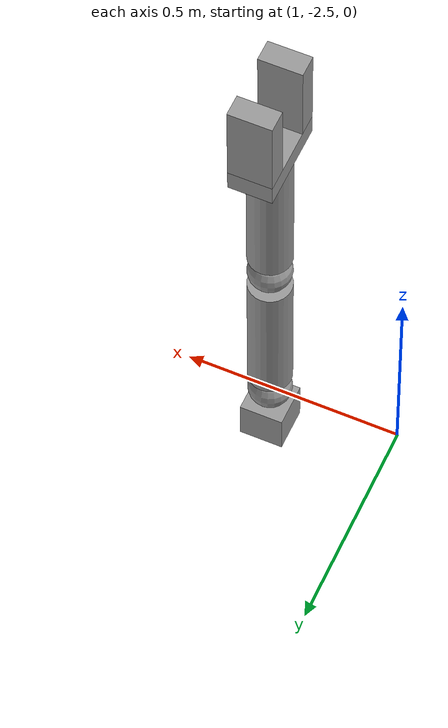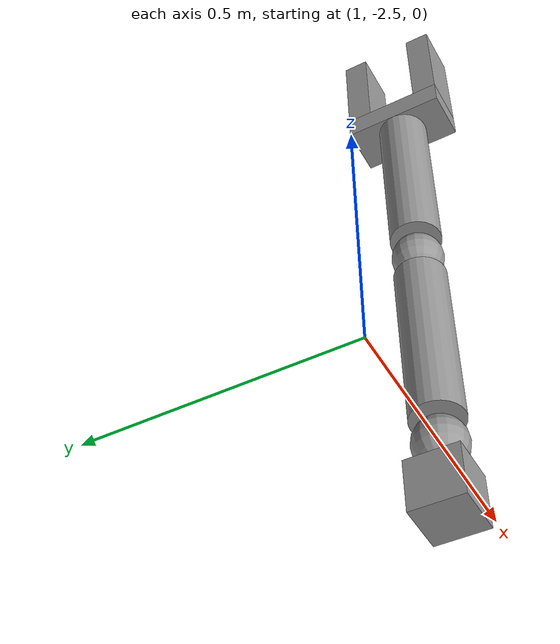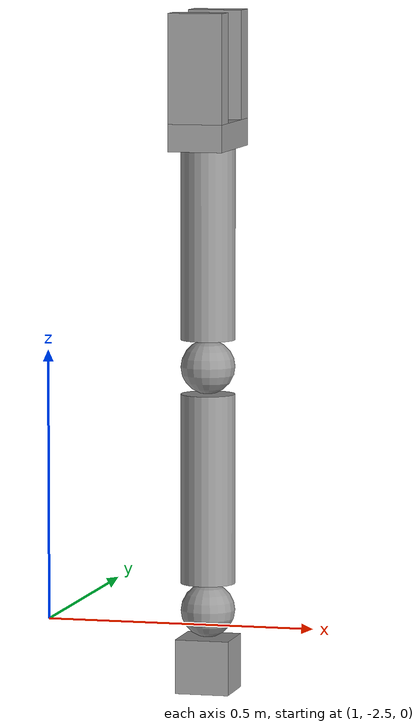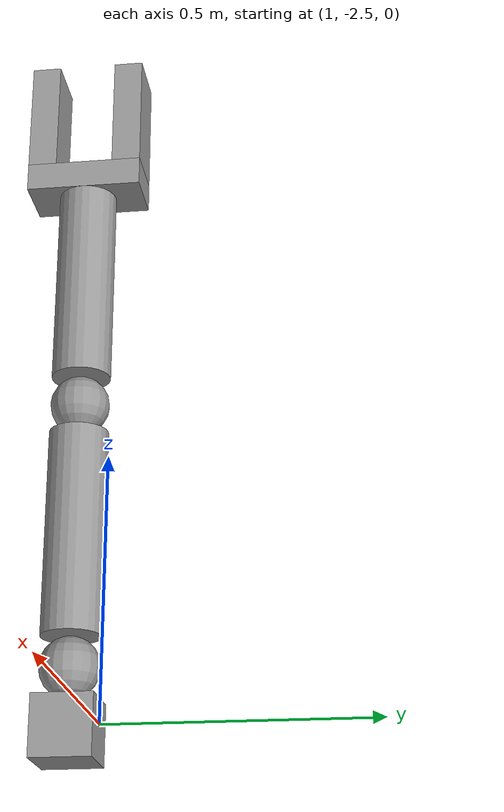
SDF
<?xml version='1.0'?>
<sdf version='1.6'>
  <model name='myrobotarm'>
    <link name='Base'>
      <inertial>
        <mass>1</mass>
        <inertia>
          <ixx>0.166667</ixx>
          <ixy>0</ixy>
          <ixz>0</ixz>
          <iyy>0.166667</iyy>
          <iyz>0</iyz>
          <izz>0.166667</izz>
        </inertia>
        <pose frame=''>0 0 0 0 -0 0</pose>
      </inertial>
      <pose frame=''>1.29977 -2.48919 -0.073664 0 -0 0</pose>
      <gravity>1</gravity>
      <self_collide>0</self_collide>
      <kinematic>0</kinematic>
      <enable_wind>0</enable_wind>
      <visual name='visual'>
        <pose frame=''>0 0 0 0 -0 0</pose>
        <geometry>
          <box>
            <size>0.1 0.1 0.1</size>
          </box>
        </geometry>
        <material>
          <lighting>1</lighting>
          <script>
            <uri>file://media/materials/scripts/gazebo.material</uri>
            <name>Gazebo/Grey</name>
          </script>
          <shader type='pixel'>
            <normal_map>__default__</normal_map>
          </shader>
          <ambient>0.3 0.3 0.3 1</ambient>
          <diffuse>0.7 0.7 0.7 1</diffuse>
          <specular>0.01 0.01 0.01 1</specular>
          <emissive>0 0 0 1</emissive>
        </material>
        <transparency>0</transparency>
        <cast_shadows>1</cast_shadows>
      </visual>
      <collision name='collision'>
        <laser_retro>0</laser_retro>
        <max_contacts>10</max_contacts>
        <pose frame=''>0 0 0 0 -0 0</pose>
        <geometry>
          <box>
            <size>0.1 0.1 0.1</size>
          </box>
        </geometry>
        <surface>
          <friction>
            <ode>
              <mu>1</mu>
              <mu2>1</mu2>
              <fdir1>0 0 0</fdir1>
              <slip1>0</slip1>
              <slip2>0</slip2>
            </ode>
            <torsional>
              <coefficient>1</coefficient>
              <patch_radius>0</patch_radius>
              <surface_radius>0</surface_radius>
              <use_patch_radius>1</use_patch_radius>
              <ode>
                <slip>0</slip>
              </ode>
            </torsional>
          </friction>
          <bounce>
            <restitution_coefficient>0</restitution_coefficient>
            <threshold>1e+06</threshold>
          </bounce>
          <contact>
            <collide_without_contact>0</collide_without_contact>
            <collide_without_contact_bitmask>1</collide_without_contact_bitmask>
            <collide_bitmask>1</collide_bitmask>
            <ode>
              <soft_cfm>0</soft_cfm>
              <soft_erp>0.2</soft_erp>
              <kp>1e+13</kp>
              <kd>1</kd>
              <max_vel>0.01</max_vel>
              <min_depth>0</min_depth>
            </ode>
            <bullet>
              <split_impulse>1</split_impulse>
              <split_impulse_penetration_threshold>-0.01</split_impulse_penetration_threshold>
              <soft_cfm>0</soft_cfm>
              <soft_erp>0.2</soft_erp>
              <kp>1e+13</kp>
              <kd>1</kd>
            </bullet>
          </contact>
        </surface>
      </collision>
    </link>
    <link name='Base_hinge'>
      <inertial>
        <mass>1</mass>
        <inertia>
          <ixx>0.1</ixx>
          <ixy>0</ixy>
          <ixz>0</ixz>
          <iyy>0.1</iyy>
          <iyz>0</iyz>
          <izz>0.1</izz>
        </inertia>
        <pose frame=''>0 0 0 0 -0 0</pose>
      </inertial>
      <pose frame=''>1.29977 -2.48919 0.026336 0 -0 0</pose>
      <gravity>1</gravity>
      <self_collide>0</self_collide>
      <kinematic>0</kinematic>
      <enable_wind>0</enable_wind>
      <visual name='visual'>
        <pose frame=''>0 0 0 0 -0 0</pose>
        <geometry>
          <sphere>
            <radius>0.05</radius>
          </sphere>
        </geometry>
        <material>
          <lighting>1</lighting>
          <script>
            <uri>file://media/materials/scripts/gazebo.material</uri>
            <name>Gazebo/Grey</name>
          </script>
          <shader type='pixel'>
            <normal_map>__default__</normal_map>
          </shader>
          <ambient>0.3 0.3 0.3 1</ambient>
          <diffuse>0.7 0.7 0.7 1</diffuse>
          <specular>0.01 0.01 0.01 1</specular>
          <emissive>0 0 0 1</emissive>
        </material>
        <transparency>0</transparency>
        <cast_shadows>1</cast_shadows>
      </visual>
      <collision name='collision'>
        <laser_retro>0</laser_retro>
        <max_contacts>10</max_contacts>
        <pose frame=''>0 0 0 0 -0 0</pose>
        <geometry>
          <sphere>
            <radius>0.05</radius>
          </sphere>
        </geometry>
        <surface>
          <friction>
            <ode>
              <mu>1</mu>
              <mu2>1</mu2>
              <fdir1>0 0 0</fdir1>
              <slip1>0</slip1>
              <slip2>0</slip2>
            </ode>
            <torsional>
              <coefficient>1</coefficient>
              <patch_radius>0</patch_radius>
              <surface_radius>0</surface_radius>
              <use_patch_radius>1</use_patch_radius>
              <ode>
                <slip>0</slip>
              </ode>
            </torsional>
          </friction>
          <bounce>
            <restitution_coefficient>0</restitution_coefficient>
            <threshold>1e+06</threshold>
          </bounce>
          <contact>
            <collide_without_contact>0</collide_without_contact>
            <collide_without_contact_bitmask>1</collide_without_contact_bitmask>
            <collide_bitmask>1</collide_bitmask>
            <ode>
              <soft_cfm>0</soft_cfm>
              <soft_erp>0.2</soft_erp>
              <kp>1e+13</kp>
              <kd>1</kd>
              <max_vel>0.01</max_vel>
              <min_depth>0</min_depth>
            </ode>
            <bullet>
              <split_impulse>1</split_impulse>
              <split_impulse_penetration_threshold>-0.01</split_impulse_penetration_threshold>
              <soft_cfm>0</soft_cfm>
              <soft_erp>0.2</soft_erp>
              <kp>1e+13</kp>
              <kd>1</kd>
            </bullet>
          </contact>
        </surface>
      </collision>
    </link>
    <link name='Gripper_base'>
      <inertial>
        <mass>1</mass>
        <inertia>
          <ixx>0.166667</ixx>
          <ixy>0</ixy>
          <ixz>0</ixz>
          <iyy>0.166667</iyy>
          <iyz>0</iyz>
          <izz>0.166667</izz>
        </inertia>
        <pose frame=''>0 0 0 0 -0 0</pose>
      </inertial>
      <pose frame=''>1.29977 -2.48919 0.901336 0 -0 0</pose>
      <gravity>1</gravity>
      <self_collide>0</self_collide>
      <kinematic>0</kinematic>
      <enable_wind>0</enable_wind>
      <visual name='visual'>
        <pose frame=''>0 0 0 0 -0 0</pose>
        <geometry>
          <box>
            <size>0.1 0.2 0.05</size>
          </box>
        </geometry>
        <material>
          <lighting>1</lighting>
          <script>
            <uri>file://media/materials/scripts/gazebo.material</uri>
            <name>Gazebo/Grey</name>
          </script>
          <shader type='vertex'>
            <normal_map>__default__</normal_map>
          </shader>
          <ambient>0.3 0.3 0.3 1</ambient>
          <diffuse>0.7 0.7 0.7 1</diffuse>
          <specular>0.01 0.01 0.01 1</specular>
          <emissive>0 0 0 1</emissive>
        </material>
        <transparency>0</transparency>
        <cast_shadows>1</cast_shadows>
      </visual>
      <collision name='collision'>
        <laser_retro>0</laser_retro>
        <max_contacts>10</max_contacts>
        <pose frame=''>0 0 0 0 -0 0</pose>
        <geometry>
          <box>
            <size>0.1 0.2 0.05</size>
          </box>
        </geometry>
        <surface>
          <friction>
            <ode>
              <mu>1</mu>
              <mu2>1</mu2>
              <fdir1>0 0 0</fdir1>
              <slip1>0</slip1>
              <slip2>0</slip2>
            </ode>
            <torsional>
              <coefficient>1</coefficient>
              <patch_radius>0</patch_radius>
              <surface_radius>0</surface_radius>
              <use_patch_radius>1</use_patch_radius>
              <ode>
                <slip>0</slip>
              </ode>
            </torsional>
          </friction>
          <bounce>
            <restitution_coefficient>0</restitution_coefficient>
            <threshold>1e+06</threshold>
          </bounce>
          <contact>
            <collide_without_contact>0</collide_without_contact>
            <collide_without_contact_bitmask>1</collide_without_contact_bitmask>
            <collide_bitmask>1</collide_bitmask>
            <ode>
              <soft_cfm>0</soft_cfm>
              <soft_erp>0.2</soft_erp>
              <kp>1e+13</kp>
              <kd>1</kd>
              <max_vel>0.01</max_vel>
              <min_depth>0</min_depth>
            </ode>
            <bullet>
              <split_impulse>1</split_impulse>
              <split_impulse_penetration_threshold>-0.01</split_impulse_penetration_threshold>
              <soft_cfm>0</soft_cfm>
              <soft_erp>0.2</soft_erp>
              <kp>1e+13</kp>
              <kd>1</kd>
            </bullet>
          </contact>
        </surface>
      </collision>
    </link>
    <link name='Gripper_left'>
      <inertial>
        <mass>1</mass>
        <inertia>
          <ixx>0.166667</ixx>
          <ixy>0</ixy>
          <ixz>0</ixz>
          <iyy>0.166667</iyy>
          <iyz>0</iyz>
          <izz>0.166667</izz>
        </inertia>
        <pose frame=''>0 0 0 0 -0 0</pose>
      </inertial>
      <pose frame=''>1.29977 -2.41418 1.02633 -1.5707 0 0</pose>
      <gravity>1</gravity>
      <self_collide>0</self_collide>
      <kinematic>0</kinematic>
      <enable_wind>0</enable_wind>
      <visual name='visual_0'>
        <pose frame=''>0 0 0 0 -0 0</pose>
        <geometry>
          <box>
            <size>0.1 0.2 0.05</size>
          </box>
        </geometry>
        <material>
          <lighting>1</lighting>
          <script>
            <uri>file://media/materials/scripts/gazebo.material</uri>
            <name>Gazebo/Grey</name>
          </script>
          <shader type='vertex'>
            <normal_map>__default__</normal_map>
          </shader>
          <ambient>0.3 0.3 0.3 1</ambient>
          <diffuse>0.7 0.7 0.7 1</diffuse>
          <specular>0.01 0.01 0.01 1</specular>
          <emissive>0 0 0 1</emissive>
        </material>
        <transparency>0</transparency>
        <cast_shadows>1</cast_shadows>
      </visual>
      <collision name='collision'>
        <laser_retro>0</laser_retro>
        <max_contacts>10</max_contacts>
        <pose frame=''>0 0 0 0 -0 0</pose>
        <geometry>
          <box>
            <size>0.1 0.2 0.05</size>
          </box>
        </geometry>
        <surface>
          <friction>
            <ode>
              <mu>1</mu>
              <mu2>1</mu2>
              <fdir1>0 0 0</fdir1>
              <slip1>0</slip1>
              <slip2>0</slip2>
            </ode>
            <torsional>
              <coefficient>1</coefficient>
              <patch_radius>0</patch_radius>
              <surface_radius>0</surface_radius>
              <use_patch_radius>1</use_patch_radius>
              <ode>
                <slip>0</slip>
              </ode>
            </torsional>
          </friction>
          <bounce>
            <restitution_coefficient>0</restitution_coefficient>
            <threshold>1e+06</threshold>
          </bounce>
          <contact>
            <collide_without_contact>0</collide_without_contact>
            <collide_without_contact_bitmask>1</collide_without_contact_bitmask>
            <collide_bitmask>1</collide_bitmask>
            <ode>
              <soft_cfm>0</soft_cfm>
              <soft_erp>0.2</soft_erp>
              <kp>1e+13</kp>
              <kd>1</kd>
              <max_vel>0.01</max_vel>
              <min_depth>0</min_depth>
            </ode>
            <bullet>
              <split_impulse>1</split_impulse>
              <split_impulse_penetration_threshold>-0.01</split_impulse_penetration_threshold>
              <soft_cfm>0</soft_cfm>
              <soft_erp>0.2</soft_erp>
              <kp>1e+13</kp>
              <kd>1</kd>
            </bullet>
          </contact>
        </surface>
      </collision>
    </link>
    <link name='Gripper_right'>
      <inertial>
        <mass>1</mass>
        <inertia>
          <ixx>0.166667</ixx>
          <ixy>0</ixy>
          <ixz>0</ixz>
          <iyy>0.166667</iyy>
          <iyz>0</iyz>
          <izz>0.166667</izz>
        </inertia>
        <pose frame=''>0 0 0 0 -0 0</pose>
      </inertial>
      <pose frame=''>1.29977 -2.56418 1.02633 1.5707 -0 0</pose>
      <gravity>1</gravity>
      <self_collide>0</self_collide>
      <kinematic>0</kinematic>
      <enable_wind>0</enable_wind>
      <visual name='visual_0'>
        <pose frame=''>0 0 0 0 -0 0</pose>
        <geometry>
          <box>
            <size>0.1 0.2 0.05</size>
          </box>
        </geometry>
        <material>
          <lighting>1</lighting>
          <script>
            <uri>file://media/materials/scripts/gazebo.material</uri>
            <name>Gazebo/Grey</name>
          </script>
          <shader type='vertex'>
            <normal_map>__default__</normal_map>
          </shader>
          <ambient>0.3 0.3 0.3 1</ambient>
          <diffuse>0.7 0.7 0.7 1</diffuse>
          <specular>0.01 0.01 0.01 1</specular>
          <emissive>0 0 0 1</emissive>
        </material>
        <transparency>0</transparency>
        <cast_shadows>1</cast_shadows>
      </visual>
      <collision name='collision'>
        <laser_retro>0</laser_retro>
        <max_contacts>10</max_contacts>
        <pose frame=''>0 0 0 0 -0 0</pose>
        <geometry>
          <box>
            <size>0.1 0.2 0.05</size>
          </box>
        </geometry>
        <surface>
          <friction>
            <ode>
              <mu>1</mu>
              <mu2>1</mu2>
              <fdir1>0 0 0</fdir1>
              <slip1>0</slip1>
              <slip2>0</slip2>
            </ode>
            <torsional>
              <coefficient>1</coefficient>
              <patch_radius>0</patch_radius>
              <surface_radius>0</surface_radius>
              <use_patch_radius>1</use_patch_radius>
              <ode>
                <slip>0</slip>
              </ode>
            </torsional>
          </friction>
          <bounce>
            <restitution_coefficient>0</restitution_coefficient>
            <threshold>1e+06</threshold>
          </bounce>
          <contact>
            <collide_without_contact>0</collide_without_contact>
            <collide_without_contact_bitmask>1</collide_without_contact_bitmask>
            <collide_bitmask>1</collide_bitmask>
            <ode>
              <soft_cfm>0</soft_cfm>
              <soft_erp>0.2</soft_erp>
              <kp>1e+13</kp>
              <kd>1</kd>
              <max_vel>0.01</max_vel>
              <min_depth>0</min_depth>
            </ode>
            <bullet>
              <split_impulse>1</split_impulse>
              <split_impulse_penetration_threshold>-0.01</split_impulse_penetration_threshold>
              <soft_cfm>0</soft_cfm>
              <soft_erp>0.2</soft_erp>
              <kp>1e+13</kp>
              <kd>1</kd>
            </bullet>
          </contact>
        </surface>
      </collision>
    </link>
    <link name='Section1'>
      <inertial>
        <mass>1</mass>
        <inertia>
          <ixx>0.145833</ixx>
          <ixy>0</ixy>
          <ixz>0</ixz>
          <iyy>0.145833</iyy>
          <iyz>0</iyz>
          <izz>0.125</izz>
        </inertia>
        <pose frame=''>0 0 0 0 -0 0</pose>
      </inertial>
      <pose frame=''>1.29977 -2.48919 0.251336 0 -0 0</pose>
      <gravity>1</gravity>
      <self_collide>0</self_collide>
      <kinematic>0</kinematic>
      <enable_wind>0</enable_wind>
      <visual name='visual'>
        <pose frame=''>0 0 0 0 -0 0</pose>
        <geometry>
          <cylinder>
            <radius>0.05</radius>
            <length>0.35</length>
          </cylinder>
        </geometry>
        <material>
          <lighting>1</lighting>
          <script>
            <uri>file://media/materials/scripts/gazebo.material</uri>
            <name>Gazebo/Grey</name>
          </script>
          <shader type='pixel'>
            <normal_map>__default__</normal_map>
          </shader>
          <ambient>0.3 0.3 0.3 1</ambient>
          <diffuse>0.7 0.7 0.7 1</diffuse>
          <specular>0.01 0.01 0.01 1</specular>
          <emissive>0 0 0 1</emissive>
        </material>
        <transparency>0</transparency>
        <cast_shadows>1</cast_shadows>
      </visual>
      <collision name='collision'>
        <laser_retro>0</laser_retro>
        <max_contacts>10</max_contacts>
        <pose frame=''>0 0 0 0 -0 0</pose>
        <geometry>
          <cylinder>
            <radius>0.05</radius>
            <length>0.35</length>
          </cylinder>
        </geometry>
        <surface>
          <friction>
            <ode>
              <mu>1</mu>
              <mu2>1</mu2>
              <fdir1>0 0 0</fdir1>
              <slip1>0</slip1>
              <slip2>0</slip2>
            </ode>
            <torsional>
              <coefficient>1</coefficient>
              <patch_radius>0</patch_radius>
              <surface_radius>0</surface_radius>
              <use_patch_radius>1</use_patch_radius>
              <ode>
                <slip>0</slip>
              </ode>
            </torsional>
          </friction>
          <bounce>
            <restitution_coefficient>0</restitution_coefficient>
            <threshold>1e+06</threshold>
          </bounce>
          <contact>
            <collide_without_contact>0</collide_without_contact>
            <collide_without_contact_bitmask>1</collide_without_contact_bitmask>
            <collide_bitmask>1</collide_bitmask>
            <ode>
              <soft_cfm>0</soft_cfm>
              <soft_erp>0.2</soft_erp>
              <kp>1e+13</kp>
              <kd>1</kd>
              <max_vel>0.01</max_vel>
              <min_depth>0</min_depth>
            </ode>
            <bullet>
              <split_impulse>1</split_impulse>
              <split_impulse_penetration_threshold>-0.01</split_impulse_penetration_threshold>
              <soft_cfm>0</soft_cfm>
              <soft_erp>0.2</soft_erp>
              <kp>1e+13</kp>
              <kd>1</kd>
            </bullet>
          </contact>
        </surface>
      </collision>
    </link>
    <link name='Section1_hinge'>
      <inertial>
        <mass>1</mass>
        <inertia>
          <ixx>0.1</ixx>
          <ixy>0</ixy>
          <ixz>0</ixz>
          <iyy>0.1</iyy>
          <iyz>0</iyz>
          <izz>0.1</izz>
        </inertia>
        <pose frame=''>0 0 0 0 -0 0</pose>
      </inertial>
      <pose frame=''>1.29977 -2.48919 0.476336 0 -0 0</pose>
      <gravity>1</gravity>
      <self_collide>0</self_collide>
      <kinematic>0</kinematic>
      <enable_wind>0</enable_wind>
      <visual name='visual'>
        <pose frame=''>0 0 0 0 -0 0</pose>
        <geometry>
          <sphere>
            <radius>0.05</radius>
          </sphere>
        </geometry>
        <material>
          <lighting>1</lighting>
          <script>
            <uri>file://media/materials/scripts/gazebo.material</uri>
            <name>Gazebo/Grey</name>
          </script>
          <shader type='pixel'>
            <normal_map>__default__</normal_map>
          </shader>
          <ambient>0.3 0.3 0.3 1</ambient>
          <diffuse>0.7 0.7 0.7 1</diffuse>
          <specular>0.01 0.01 0.01 1</specular>
          <emissive>0 0 0 1</emissive>
        </material>
        <transparency>0</transparency>
        <cast_shadows>1</cast_shadows>
      </visual>
      <collision name='collision'>
        <laser_retro>0</laser_retro>
        <max_contacts>10</max_contacts>
        <pose frame=''>0 0 0 0 -0 0</pose>
        <geometry>
          <sphere>
            <radius>0.05</radius>
          </sphere>
        </geometry>
        <surface>
          <friction>
            <ode>
              <mu>1</mu>
              <mu2>1</mu2>
              <fdir1>0 0 0</fdir1>
              <slip1>0</slip1>
              <slip2>0</slip2>
            </ode>
            <torsional>
              <coefficient>1</coefficient>
              <patch_radius>0</patch_radius>
              <surface_radius>0</surface_radius>
              <use_patch_radius>1</use_patch_radius>
              <ode>
                <slip>0</slip>
              </ode>
            </torsional>
          </friction>
          <bounce>
            <restitution_coefficient>0</restitution_coefficient>
            <threshold>1e+06</threshold>
          </bounce>
          <contact>
            <collide_without_contact>0</collide_without_contact>
            <collide_without_contact_bitmask>1</collide_without_contact_bitmask>
            <collide_bitmask>1</collide_bitmask>
            <ode>
              <soft_cfm>0</soft_cfm>
              <soft_erp>0.2</soft_erp>
              <kp>1e+13</kp>
              <kd>1</kd>
              <max_vel>0.01</max_vel>
              <min_depth>0</min_depth>
            </ode>
            <bullet>
              <split_impulse>1</split_impulse>
              <split_impulse_penetration_threshold>-0.01</split_impulse_penetration_threshold>
              <soft_cfm>0</soft_cfm>
              <soft_erp>0.2</soft_erp>
              <kp>1e+13</kp>
              <kd>1</kd>
            </bullet>
          </contact>
        </surface>
      </collision>
    </link>
    <link name='Section2'>
      <inertial>
        <mass>1</mass>
        <inertia>
          <ixx>0.145833</ixx>
          <ixy>0</ixy>
          <ixz>0</ixz>
          <iyy>0.145833</iyy>
          <iyz>0</iyz>
          <izz>0.125</izz>
        </inertia>
        <pose frame=''>0 0 0 0 -0 0</pose>
      </inertial>
      <pose frame=''>1.29977 -2.48919 0.701336 0 -0 0</pose>
      <gravity>1</gravity>
      <self_collide>0</self_collide>
      <kinematic>0</kinematic>
      <enable_wind>0</enable_wind>
      <visual name='visual'>
        <pose frame=''>0 0 0 0 -0 0</pose>
        <geometry>
          <cylinder>
            <radius>0.05</radius>
            <length>0.35</length>
          </cylinder>
        </geometry>
        <material>
          <lighting>1</lighting>
          <script>
            <uri>file://media/materials/scripts/gazebo.material</uri>
            <name>Gazebo/Grey</name>
          </script>
          <shader type='pixel'>
            <normal_map>__default__</normal_map>
          </shader>
          <ambient>0.3 0.3 0.3 1</ambient>
          <diffuse>0.7 0.7 0.7 1</diffuse>
          <specular>0.01 0.01 0.01 1</specular>
          <emissive>0 0 0 1</emissive>
        </material>
        <transparency>0</transparency>
        <cast_shadows>1</cast_shadows>
      </visual>
      <collision name='collision'>
        <laser_retro>0</laser_retro>
        <max_contacts>10</max_contacts>
        <pose frame=''>0 0 0 0 -0 0</pose>
        <geometry>
          <cylinder>
            <radius>0.05</radius>
            <length>0.35</length>
          </cylinder>
        </geometry>
        <surface>
          <friction>
            <ode>
              <mu>1</mu>
              <mu2>1</mu2>
              <fdir1>0 0 0</fdir1>
              <slip1>0</slip1>
              <slip2>0</slip2>
            </ode>
            <torsional>
              <coefficient>1</coefficient>
              <patch_radius>0</patch_radius>
              <surface_radius>0</surface_radius>
              <use_patch_radius>1</use_patch_radius>
              <ode>
                <slip>0</slip>
              </ode>
            </torsional>
          </friction>
          <bounce>
            <restitution_coefficient>0</restitution_coefficient>
            <threshold>1e+06</threshold>
          </bounce>
          <contact>
            <collide_without_contact>0</collide_without_contact>
            <collide_without_contact_bitmask>1</collide_without_contact_bitmask>
            <collide_bitmask>1</collide_bitmask>
            <ode>
              <soft_cfm>0</soft_cfm>
              <soft_erp>0.2</soft_erp>
              <kp>1e+13</kp>
              <kd>1</kd>
              <max_vel>0.01</max_vel>
              <min_depth>0</min_depth>
            </ode>
            <bullet>
              <split_impulse>1</split_impulse>
              <split_impulse_penetration_threshold>-0.01</split_impulse_penetration_threshold>
              <soft_cfm>0</soft_cfm>
              <soft_erp>0.2</soft_erp>
              <kp>1e+13</kp>
              <kd>1</kd>
            </bullet>
          </contact>
        </surface>
      </collision>
    </link>
    <joint name='Fix1' type='fixed'>
      <parent>Section1</parent>
      <child>Section1_hinge</child>
      <pose frame=''>0 0 0 0 -0 0</pose>
      <physics>
        <ode>
          <limit>
            <cfm>0</cfm>
            <erp>0.2</erp>
          </limit>
          <suspension>
            <cfm>0</cfm>
            <erp>0.2</erp>
          </suspension>
        </ode>
      </physics>
    </joint>
    <joint name='Gripper_J_left' type='prismatic'>
      <parent>Gripper_base</parent>
      <child>Gripper_right</child>
      <pose frame=''>0 0 0 0 -0 0</pose>
      <axis>
        <xyz>0 0 1</xyz>
        <use_parent_model_frame>0</use_parent_model_frame>
        <limit>
          <lower>-1.79769e+308</lower>
          <upper>1.79769e+308</upper>
          <effort>-1</effort>
          <velocity>-1</velocity>
        </limit>
        <dynamics>
          <spring_reference>0</spring_reference>
          <spring_stiffness>0</spring_stiffness>
          <damping>0</damping>
          <friction>3</friction>
        </dynamics>
      </axis>
      <physics>
        <ode>
          <limit>
            <cfm>0</cfm>
            <erp>0.2</erp>
          </limit>
          <suspension>
            <cfm>0</cfm>
            <erp>0.2</erp>
          </suspension>
        </ode>
      </physics>
    </joint>
    <joint name='Gripper_J_right' type='prismatic'>
      <parent>Gripper_base</parent>
      <child>Gripper_left</child>
      <pose frame=''>0 0 0 0 -0 0</pose>
      <axis>
        <xyz>0 0 1</xyz>
        <use_parent_model_frame>0</use_parent_model_frame>
        <limit>
          <lower>-1.79769e+308</lower>
          <upper>1.79769e+308</upper>
          <effort>-1</effort>
          <velocity>-1</velocity>
        </limit>
        <dynamics>
          <spring_reference>0</spring_reference>
          <spring_stiffness>0</spring_stiffness>
          <damping>0</damping>
          <friction>3</friction>
        </dynamics>
      </axis>
      <physics>
        <ode>
          <limit>
            <cfm>0</cfm>
            <erp>0.2</erp>
          </limit>
          <suspension>
            <cfm>0</cfm>
            <erp>0.2</erp>
          </suspension>
        </ode>
      </physics>
    </joint>
    <joint name='J1' type='revolute'>
      <parent>Base</parent>
      <child>Base_hinge</child>
      <pose frame=''>0 0 0 0 -0 0</pose>
      <axis>
        <xyz>0 0 1</xyz>
        <use_parent_model_frame>0</use_parent_model_frame>
        <limit>
          <lower>-1.79769e+308</lower>
          <upper>1.79769e+308</upper>
          <effort>-1</effort>
          <velocity>-1</velocity>
        </limit>
        <dynamics>
          <spring_reference>0</spring_reference>
          <spring_stiffness>0</spring_stiffness>
          <damping>0</damping>
          <friction>3</friction>
        </dynamics>
      </axis>
      <physics>
        <ode>
          <limit>
            <cfm>0</cfm>
            <erp>0.2</erp>
          </limit>
          <suspension>
            <cfm>0</cfm>
            <erp>0.2</erp>
          </suspension>
        </ode>
      </physics>
    </joint>
    <joint name='J2' type='revolute'>
      <parent>Section1</parent>
      <child>Base_hinge</child>
      <pose frame=''>0 0 0 0 -0 0</pose>
      <axis>
        <xyz>0 1 0</xyz>
        <use_parent_model_frame>0</use_parent_model_frame>
        <limit>
          <lower>-1.79769e+308</lower>
          <upper>1.79769e+308</upper>
          <effort>-1</effort>
          <velocity>-1</velocity>
        </limit>
        <dynamics>
          <spring_reference>0</spring_reference>
          <spring_stiffness>0</spring_stiffness>
          <damping>0</damping>
          <friction>3</friction>
        </dynamics>
      </axis>
      <physics>
        <ode>
          <limit>
            <cfm>0</cfm>
            <erp>0.2</erp>
          </limit>
          <suspension>
            <cfm>0</cfm>
            <erp>0.2</erp>
          </suspension>
        </ode>
      </physics>
    </joint>
    <joint name='J3' type='revolute'>
      <parent>Section2</parent>
      <child>Section1_hinge</child>
      <pose frame=''>0 0 0 0 -0 0</pose>
      <axis>
        <xyz>0 1 0</xyz>
        <use_parent_model_frame>0</use_parent_model_frame>
        <limit>
          <lower>-1.79769e+308</lower>
          <upper>1.79769e+308</upper>
          <effort>-1</effort>
          <velocity>-1</velocity>
        </limit>
        <dynamics>
          <spring_reference>0</spring_reference>
          <spring_stiffness>0</spring_stiffness>
          <damping>0</damping>
          <friction>3</friction>
        </dynamics>
      </axis>
      <physics>
        <ode>
          <limit>
            <cfm>0</cfm>
            <erp>0.2</erp>
          </limit>
          <suspension>
            <cfm>0</cfm>
            <erp>0.2</erp>
          </suspension>
        </ode>
      </physics>
    </joint>
    <joint name='J4' type='revolute'>
      <parent>Gripper_base</parent>
      <child>Section2</child>
      <pose frame=''>0 0 0 0 -0 0</pose>
      <axis>
        <xyz>0 0 1</xyz>
        <use_parent_model_frame>0</use_parent_model_frame>
        <limit>
          <lower>-1.79769e+308</lower>
          <upper>1.79769e+308</upper>
          <effort>-1</effort>
          <velocity>-1</velocity>
        </limit>
        <dynamics>
          <spring_reference>0</spring_reference>
          <spring_stiffness>0</spring_stiffness>
          <damping>0</damping>
          <friction>3</friction>
        </dynamics>
      </axis>
      <physics>
        <ode>
          <limit>
            <cfm>0</cfm>
            <erp>0.2</erp>
          </limit>
          <suspension>
            <cfm>0</cfm>
            <erp>0.2</erp>
          </suspension>
        </ode>
      </physics>
    </joint>
    <static>0</static>
    <allow_auto_disable>1</allow_auto_disable>
  </model>
</sdf>
